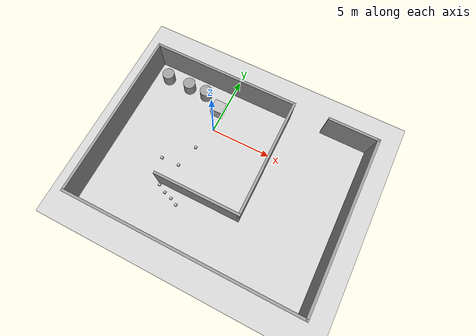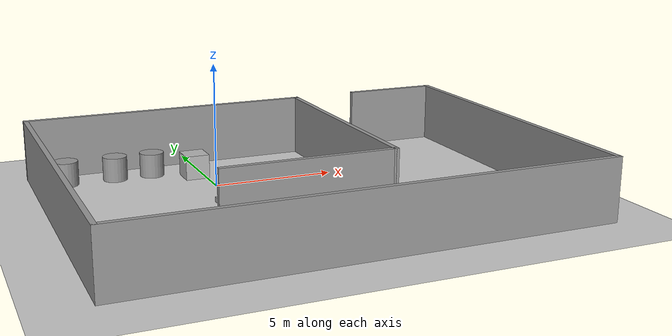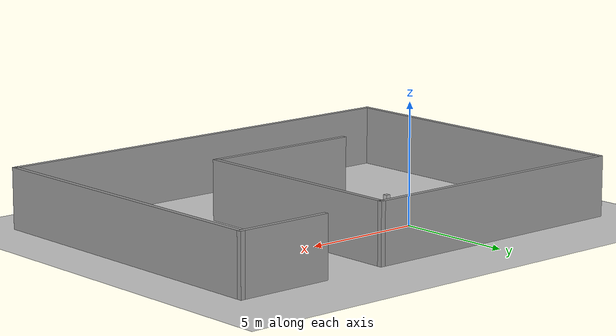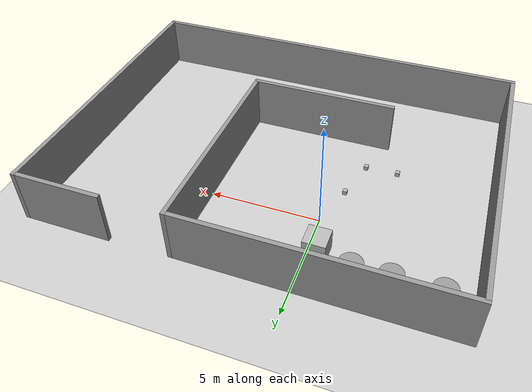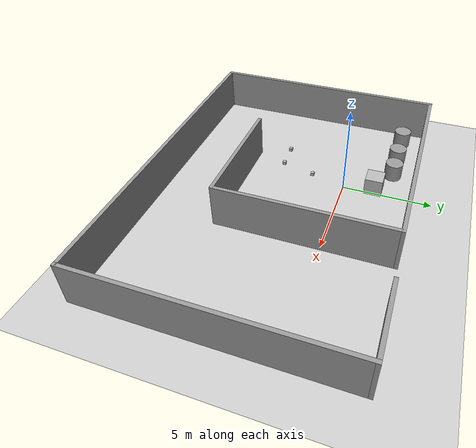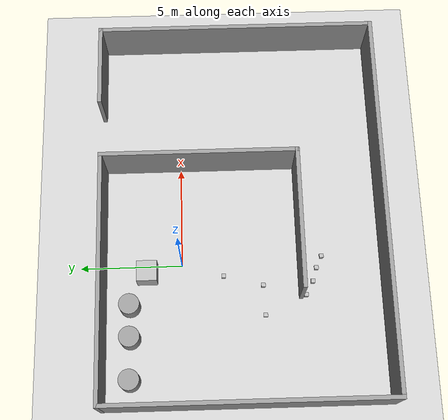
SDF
<sdf version="1.4">
 <world name="default">
  <model name="ground_plane">
   <static>1</static>
   <link name="link">
    <collision name="collision">
     <geometry><plane><normal>0 0 1</normal><size>100 100</size></plane></geometry>
     <surface><friction><ode><mu>100</mu><mu2>50</mu2></ode></friction></surface>
    </collision>
    <visual name="visual">
     <cast_shadows>0</cast_shadows>
     <geometry><plane><normal>0 0 1</normal><size>100 100</size></plane></geometry>
     <material>
      <script><uri>file://media/materials/scripts/gazebo.material</uri><name>Gazebo/Grey</name></script>
     </material>
    </visual>
    <velocity_decay><linear>0</linear><angular>0</angular></velocity_decay>
   </link>
  </model>
  <model name="new_world">
   <link name="Wall_0">
    <collision name="Wall_0_Collision">
     <geometry><box><size>6.98 0.2 2.5</size></box></geometry>
     <pose>0 0 1.25 0 -0 0</pose>
    </collision>
    <visual name="Wall_0_Visual">
     <pose>0 0 1.25 0 -0 0</pose>
     <geometry><box><size>6.98 0.2 2.5</size></box></geometry>
     <material>
      <script><uri>file://media/materials/scripts/gazebo.material</uri><name>Gazebo/Grey</name></script>
     </material>
    </visual>
    <velocity_decay><linear>0</linear><angular>0</angular></velocity_decay>
    <pose>1.71 -5.77 0 0 -0 0</pose>
   </link>
   <link name="Wall_1">
    <collision name="Wall_1_Collision">
     <geometry><box><size>9.80033 0.2 2.5</size></box></geometry>
     <pose>0 0 1.25 0 -0 0</pose>
    </collision>
    <visual name="Wall_1_Visual">
     <pose>0 0 1.25 0 -0 0</pose>
     <geometry><box><size>9.80033 0.2 2.5</size></box></geometry>
     <material>
      <script><uri>file://media/materials/scripts/gazebo.material</uri><name>Gazebo/Grey</name></script>
     </material>
    </visual>
    <velocity_decay><linear>0</linear><angular>0</angular></velocity_decay>
    <pose>5.1 -0.969835 0 0 -0 1.5708</pose>
   </link>
   <link name="Wall_2">
    <collision name="Wall_2_Collision">
     <geometry><box><size>12.1618 0.2 2.5</size></box></geometry>
     <pose>0 0 1.25 0 -0 0</pose>
    </collision>
    <visual name="Wall_2_Visual">
     <pose>0 0 1.25 0 -0 0</pose>
     <geometry><box><size>12.1618 0.2 2.5</size></box></geometry>
     <material>
      <script><uri>file://media/materials/scripts/gazebo.material</uri><name>Gazebo/Grey</name></script>
     </material>
    </visual>
    <velocity_decay><linear>0</linear><angular>0</angular></velocity_decay>
    <pose>-0.880903 3.83033 0 0 -0 3.14159</pose>
   </link>
   <link name="Wall_3">
    <collision name="Wall_3_Collision">
     <geometry><box><size>13.879 0.2 2.5</size></box></geometry>
     <pose>0 0 1.25 0 -0 0</pose>
    </collision>
    <visual name="Wall_3_Visual">
     <pose>0 0 1.25 0 -0 0</pose>
     <geometry><box><size>13.879 0.2 2.5</size></box></geometry>
     <material>
      <script><uri>file://media/materials/scripts/gazebo.material</uri><name>Gazebo/Grey</name></script>
     </material>
    </visual>
    <velocity_decay><linear>0</linear><angular>0</angular></velocity_decay>
    <pose>-6.86181 -3.00917 0 0 0 -1.5708</pose>
   </link>
   <link name="Wall_4">
    <collision name="Wall_4_Collision">
     <geometry><box><size>18.9692 0.2 2.5</size></box></geometry>
     <pose>0 0 1.25 0 -0 0</pose>
    </collision>
    <visual name="Wall_4_Visual">
     <pose>0 0 1.25 0 -0 0</pose>
     <geometry><box><size>18.9692 0.2 2.5</size></box></geometry>
     <material>
      <script><uri>file://media/materials/scripts/gazebo.material</uri><name>Gazebo/Grey</name></script>
     </material>
    </visual>
    <velocity_decay><linear>0</linear><angular>0</angular></velocity_decay>
    <pose>2.5228 -9.84868 0 0 -0 0</pose>
   </link>
   <link name="Wall_5">
    <collision name="Wall_5_Collision">
     <geometry><box><size>13.9523 0.2 2.5</size></box></geometry>
     <pose>0 0 1.25 0 -0 0</pose>
    </collision>
    <visual name="Wall_5_Visual">
     <pose>0 0 1.25 0 -0 0</pose>
     <geometry><box><size>13.9523 0.2 2.5</size></box></geometry>
     <material>
      <script><uri>file://media/materials/scripts/gazebo.material</uri><name>Gazebo/Grey</name></script>
     </material>
    </visual>
    <velocity_decay><linear>0</linear><angular>0</angular></velocity_decay>
    <pose>11.9074 -2.97252 0 0 -0 1.5708</pose>
   </link>
   <link name="Wall_6">
    <collision name="Wall_6_Collision">
     <geometry><box><size>4.11023 0.2 2.5</size></box></geometry>
     <pose>0 0 1.25 0 -0 0</pose>
    </collision>
    <visual name="Wall_6_Visual">
     <pose>0 0 1.25 0 -0 0</pose>
     <geometry><box><size>4.11023 0.2 2.5</size></box></geometry>
     <material>
      <script><uri>file://media/materials/scripts/gazebo.material</uri><name>Gazebo/Grey</name></script>
     </material>
    </visual>
    <velocity_decay><linear>0</linear><angular>0</angular></velocity_decay>
    <pose>9.95229 3.90363 0 0 -0 3.14159</pose>
   </link>
   <static>1</static>
  </model>
  <model name="unit_cylinder_1">
   <pose>-5.57183 2.54335 0.499994 -1e-06 1e-06 0</pose>
   <link name="link">
    <inertial>
     <mass>1</mass>
     <inertia><ixx>1</ixx><ixy>0</ixy><ixz>0</ixz><iyy>1</iyy><iyz>0</iyz><izz>1</izz></inertia>
    </inertial>
    <collision name="collision">
     <geometry><cylinder><radius>0.5</radius><length>1</length></cylinder></geometry>
    </collision>
    <visual name="visual">
     <geometry><cylinder><radius>0.5</radius><length>1</length></cylinder></geometry>
     <material>
      <script><uri>file://media/materials/scripts/gazebo.material</uri><name>Gazebo/Grey</name></script>
     </material>
    </visual>
    <velocity_decay><linear>0</linear><angular>0</angular></velocity_decay>
   </link>
   <static>0</static>
  </model>
  <model name="unit_cylinder_2">
   <pose>-3.56371 2.53868 0.499995 0 -0 0</pose>
   <link name="link">
    <inertial>
     <mass>1</mass>
     <inertia><ixx>1</ixx><ixy>0</ixy><ixz>0</ixz><iyy>1</iyy><iyz>0</iyz><izz>1</izz></inertia>
    </inertial>
    <collision name="collision">
     <geometry><cylinder><radius>0.5</radius><length>1</length></cylinder></geometry>
    </collision>
    <visual name="visual">
     <geometry><cylinder><radius>0.5</radius><length>1</length></cylinder></geometry>
     <material>
      <script><uri>file://media/materials/scripts/gazebo.material</uri><name>Gazebo/Grey</name></script>
     </material>
    </visual>
    <velocity_decay><linear>0</linear><angular>0</angular></velocity_decay>
   </link>
   <static>0</static>
  </model>
  <model name="unit_cylinder_3">
   <pose>-2 2.55038 0.499994 -1e-06 1e-06 0</pose>
   <link name="link">
    <inertial>
     <mass>1</mass>
     <inertia><ixx>1</ixx><ixy>0</ixy><ixz>0</ixz><iyy>1</iyy><iyz>0</iyz><izz>1</izz></inertia>
    </inertial>
    <collision name="collision">
     <geometry><cylinder><radius>0.5</radius><length>1</length></cylinder></geometry>
    </collision>
    <visual name="visual">
     <geometry><cylinder><radius>0.5</radius><length>1</length></cylinder></geometry>
     <material>
      <script><uri>file://media/materials/scripts/gazebo.material</uri><name>Gazebo/Grey</name></script>
     </material>
    </visual>
    <velocity_decay><linear>0</linear><angular>0</angular></velocity_decay>
   </link>
   <static>0</static>
  </model>
  <model name="box">
   <static>0</static>
   <link name="box">
    <pose>0 0 0.5 0 -0 0</pose>
    <collision name="collision"><geometry><box><size>0.2 0.2 0.2</size></box></geometry></collision>
    <visual name="visual">
     <geometry><box><size>0.2 0.2 0.2</size></box></geometry>
     <material>
      <script>
       <uri>model://box/material/scripts</uri>
       <uri>model://box/material/textures</uri>
       <name>Custom/box</name>
      </script>
     </material>
    </visual>
    <velocity_decay><linear>0</linear><angular>0</angular></velocity_decay>
    <inertial>
     <inertia><ixx>1</ixx><ixy>0</ixy><ixz>0</ixz><iyy>1</iyy><iyz>0</iyz><izz>1</izz></inertia>
     <mass>1</mass>
    </inertial>
   </link>
   <pose>0.310044 -6.87526 -0.4 1e-06 2e-06 -6e-06</pose>
  </model>
  <model name="box_5">
   <static>0</static>
   <link name="box">
    <pose>0 0 0.5 0 -0 0</pose>
    <collision name="collision"><geometry><box><size>0.2 0.2 0.2</size></box></geometry></collision>
    <visual name="visual">
     <geometry><box><size>0.2 0.2 0.2</size></box></geometry>
     <material>
      <script>
       <uri>model://box/material/scripts</uri>
       <uri>model://box/material/textures</uri>
       <name>Custom/box</name>
      </script>
     </material>
    </visual>
    <velocity_decay><linear>0</linear><angular>0</angular></velocity_decay>
    <inertial>
     <inertia><ixx>1</ixx><ixy>0</ixy><ixz>0</ixz><iyy>1</iyy><iyz>0</iyz><izz>1</izz></inertia>
     <mass>1</mass>
    </inertial>
   </link>
   <pose>-0.948215 -6.3866 -0.399999 -8e-06 -1.29247e-26 -1.1e-05</pose>
  </model>
  <model name="box_6">
   <static>0</static>
   <link name="box">
    <pose>0 0 0.5 0 -0 0</pose>
    <collision name="collision"><geometry><box><size>0.2 0.2 0.2</size></box></geometry></collision>
    <visual name="visual">
     <geometry><box><size>0.2 0.2 0.2</size></box></geometry>
     <material>
      <script>
       <uri>model://box/material/scripts</uri>
       <uri>model://box/material/textures</uri>
       <name>Custom/box</name>
      </script>
     </material>
    </visual>
    <velocity_decay><linear>0</linear><angular>0</angular></velocity_decay>
    <inertial>
     <inertia><ixx>1</ixx><ixy>0</ixy><ixz>0</ixz><iyy>1</iyy><iyz>0</iyz><izz>1</izz></inertia>
     <mass>1</mass>
    </inertial>
   </link>
   <pose>-1.61311 -6.02217 -0.399996 2e-05 2.3e-05 0</pose>
  </model>
  <model name="face">
   <static>0</static>
   <link name="face">
    <pose>0 0 0.5 0 -0 0</pose>
    <collision name="collision"><geometry><box><size>1 1 1</size></box></geometry></collision>
    <visual name="visual">
     <geometry><box><size>1 1 1</size></box></geometry>
     <material>
      <script>
       <uri>model://face/material/scripts</uri>
       <uri>model://face/material/textures</uri>
       <name>Custom/face</name>
      </script>
     </material>
    </visual>
    <velocity_decay><linear>0</linear><angular>0</angular></velocity_decay>
    <inertial>
     <inertia><ixx>1</ixx><ixy>0</ixy><ixz>0</ixz><iyy>1</iyy><iyz>0</iyz><izz>1</izz></inertia>
     <mass>1</mass>
    </inertial>
   </link>
   <pose>-0.394991 1.70785 -0 0 -0 0</pose>
  </model>
  <model name="box_9">
   <static>0</static>
   <link name="box">
    <pose>0 0 0.5 0 -0 0</pose>
    <collision name="collision"><geometry><box><size>0.2 0.2 0.2</size></box></geometry></collision>
    <visual name="visual">
     <geometry><box><size>0.2 0.2 0.2</size></box></geometry>
     <material>
      <script>
       <uri>model://box/material/scripts</uri>
       <uri>model://box/material/textures</uri>
       <name>Custom/box</name>
      </script>
     </material>
    </visual>
    <velocity_decay><linear>0</linear><angular>0</angular></velocity_decay>
    <inertial>
     <inertia><ixx>1</ixx><ixy>0</ixy><ixz>0</ixz><iyy>1</iyy><iyz>0</iyz><izz>1</izz></inertia>
     <mass>1</mass>
    </inertial>
   </link>
   <pose>-0.574201 -2.01018 -0.4 1e-06 -1e-06 -7e-06</pose>
  </model>
  <model name="box_10">
   <static>0</static>
   <link name="box">
    <pose>0 0 0.5 0 -0 0</pose>
    <collision name="collision"><geometry><box><size>0.2 0.2 0.2</size></box></geometry></collision>
    <visual name="visual">
     <geometry><box><size>0.2 0.2 0.2</size></box></geometry>
     <material>
      <script>
       <uri>model://box/material/scripts</uri>
       <uri>model://box/material/textures</uri>
       <name>Custom/box</name>
      </script>
     </material>
    </visual>
    <velocity_decay><linear>0</linear><angular>0</angular></velocity_decay>
    <inertial>
     <inertia><ixx>1</ixx><ixy>0</ixy><ixz>0</ixz><iyy>1</iyy><iyz>0</iyz><izz>1</izz></inertia>
     <mass>1</mass>
    </inertial>
   </link>
   <pose>-1.08139 -3.94536 -0.4 0 0 -1e-06</pose>
  </model>
  <model name="box_11">
   <static>0</static>
   <link name="box">
    <pose>0 0 0.5 0 -0 0</pose>
    <collision name="collision"><geometry><box><size>0.2 0.2 0.2</size></box></geometry></collision>
    <visual name="visual">
     <geometry><box><size>0.2 0.2 0.2</size></box></geometry>
     <material>
      <script>
       <uri>model://box/material/scripts</uri>
       <uri>model://box/material/textures</uri>
       <name>Custom/box</name>
      </script>
     </material>
    </visual>
    <velocity_decay><linear>0</linear><angular>0</angular></velocity_decay>
    <inertial>
     <inertia><ixx>1</ixx><ixy>0</ixy><ixz>0</ixz><iyy>1</iyy><iyz>0</iyz><izz>1</izz></inertia>
     <mass>1</mass>
    </inertial>
   </link>
   <pose>-2.56015 -4 -0.4 0 0 -6e-06</pose>
  </model>
  <model name="box_15">
   <static>0</static>
   <link name="box">
    <pose>0 0 0.5 0 -0 0</pose>
    <collision name="collision"><geometry><box><size>0.2 0.2 0.2</size></box></geometry></collision>
    <visual name="visual">
     <geometry><box><size>0.2 0.2 0.2</size></box></geometry>
     <material>
      <script>
       <uri>model://box/material/scripts</uri>
       <uri>model://box/material/textures</uri>
       <name>Custom/box</name>
      </script>
     </material>
    </visual>
    <velocity_decay><linear>0</linear><angular>0</angular></velocity_decay>
    <inertial>
     <inertia><ixx>1</ixx><ixy>0</ixy><ixz>0</ixz><iyy>1</iyy><iyz>0</iyz><izz>1</izz></inertia>
     <mass>1</mass>
    </inertial>
   </link>
   <pose>-0.274807 -6.59166 -0.4 6e-06 -4e-06 -0.004134</pose>
  </model>
 </world>
</sdf>
